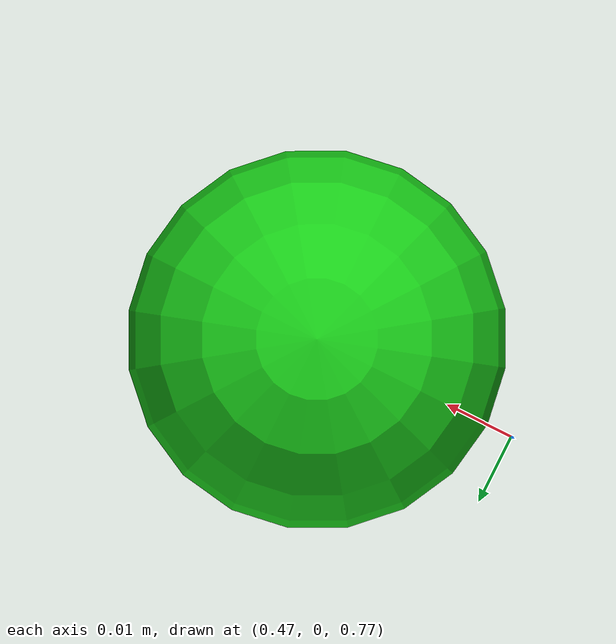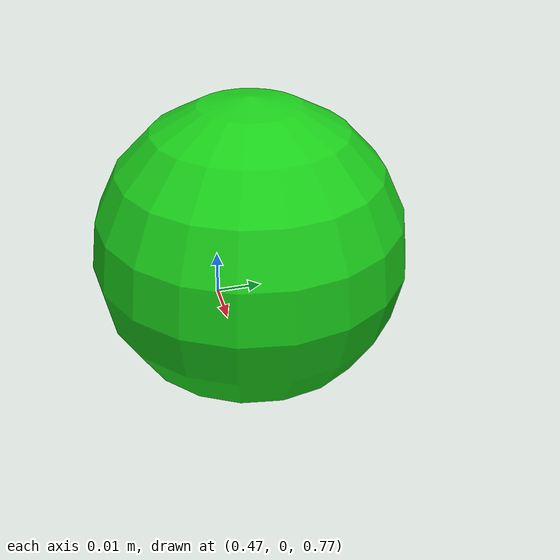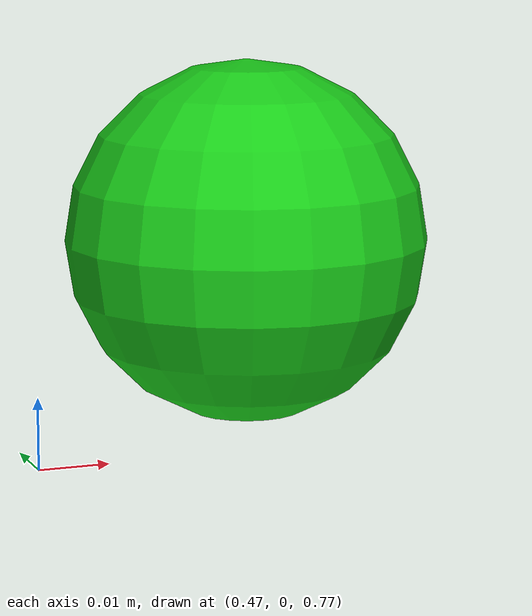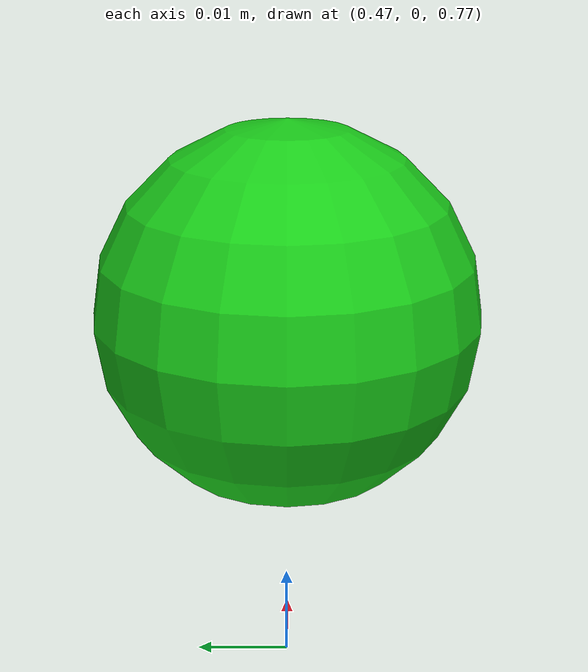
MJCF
<?xml version="1.0"?>
<mujoco>
    <compiler angle="radian"/>
    <option collision="predefined" timestep="0.002"/>
    <size njmax="1000" nconmax="400"/>
    <asset>
        <texture type="skybox" builtin="gradient" rgb1="1 1 1" rgb2="0.6 0.8 1" width="256" height="256"/>
    </asset>
    <worldbody>
        <light name="scene_directional_light" directional="true" castshadow="false" cutoff="4" exponent="20"
               diffuse="1 1 1" specular="0 0 0" pos=".9 .3 2.5"/>
        <body name="target" pos="0.5 0.0 0.8">
            <geom name="target" type="sphere" size="0.025" rgba="0.8 0.1 0.1 0.5"/>
        </body>
        <body name="mirror" pos="0.5 0.0 0.8">
            <geom name="mirror" type="sphere" size="0.025" rgba="0.1 0.8 0.1 1.0"/>
        </body>
    </worldbody>
</mujoco>
